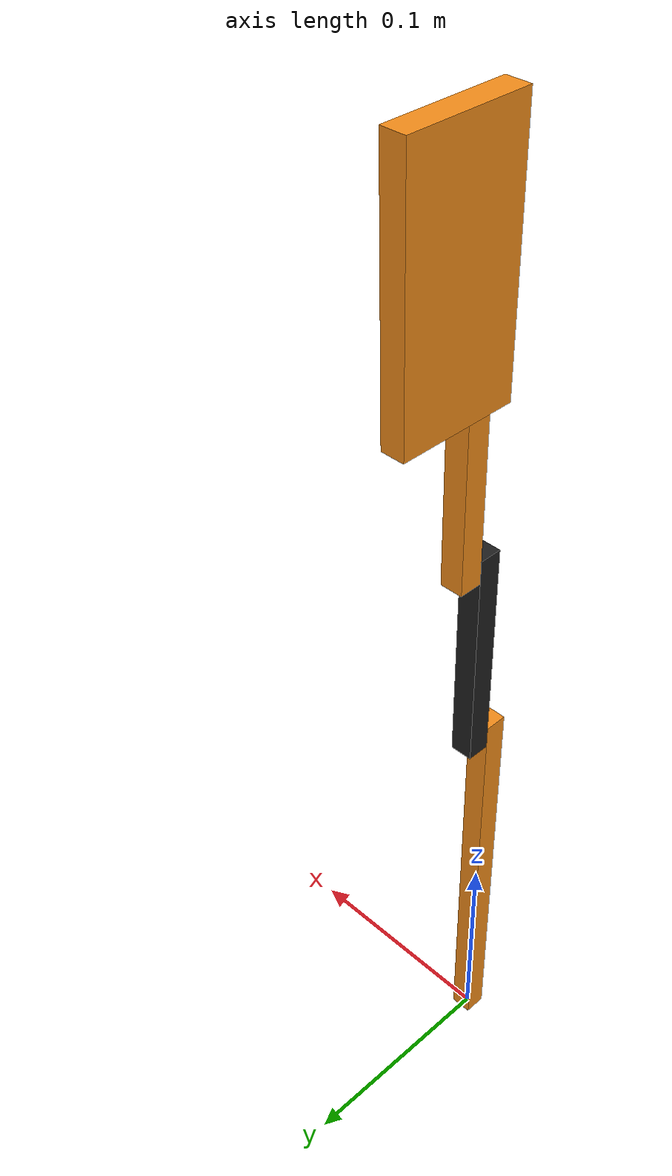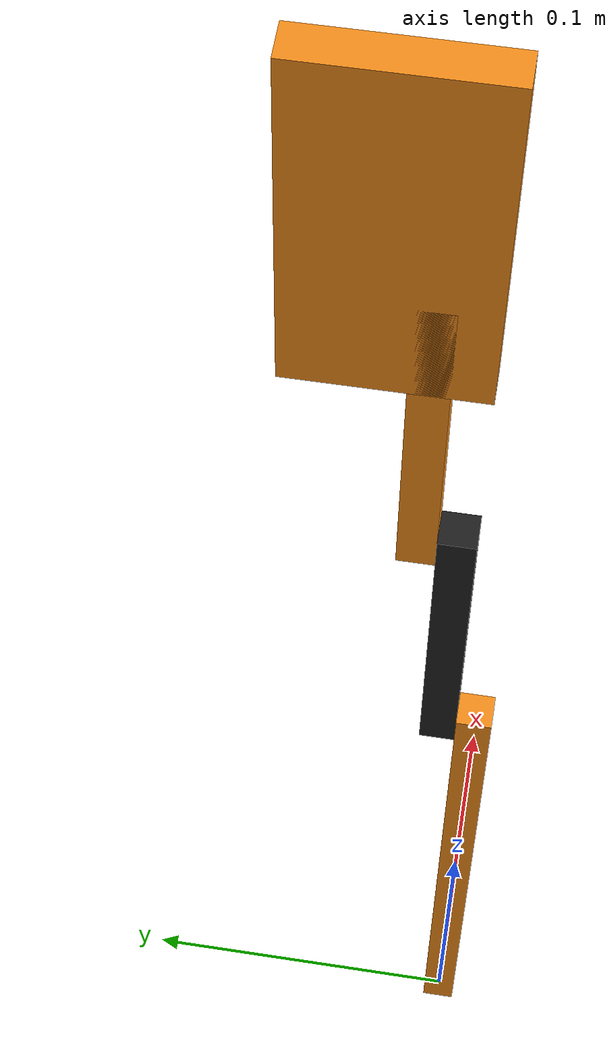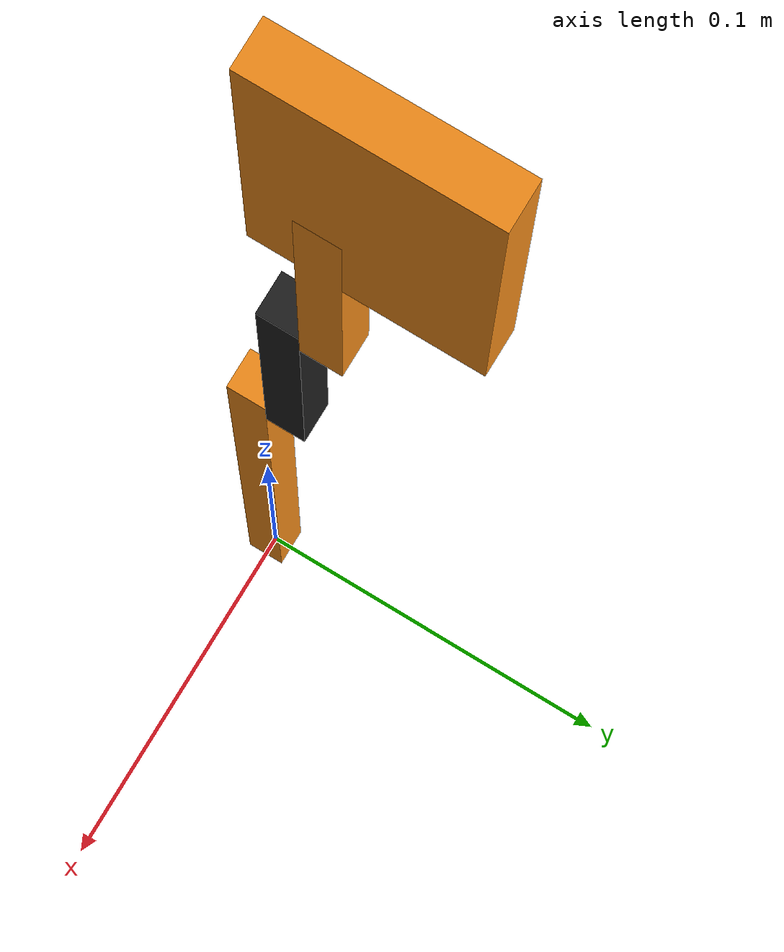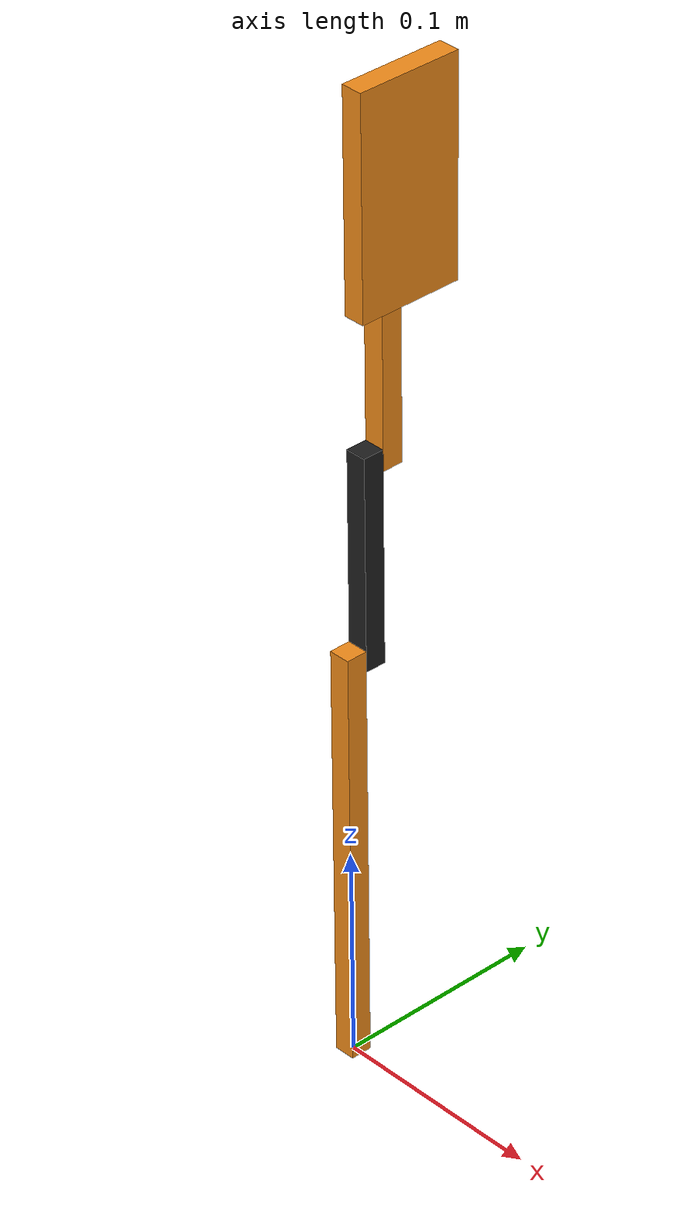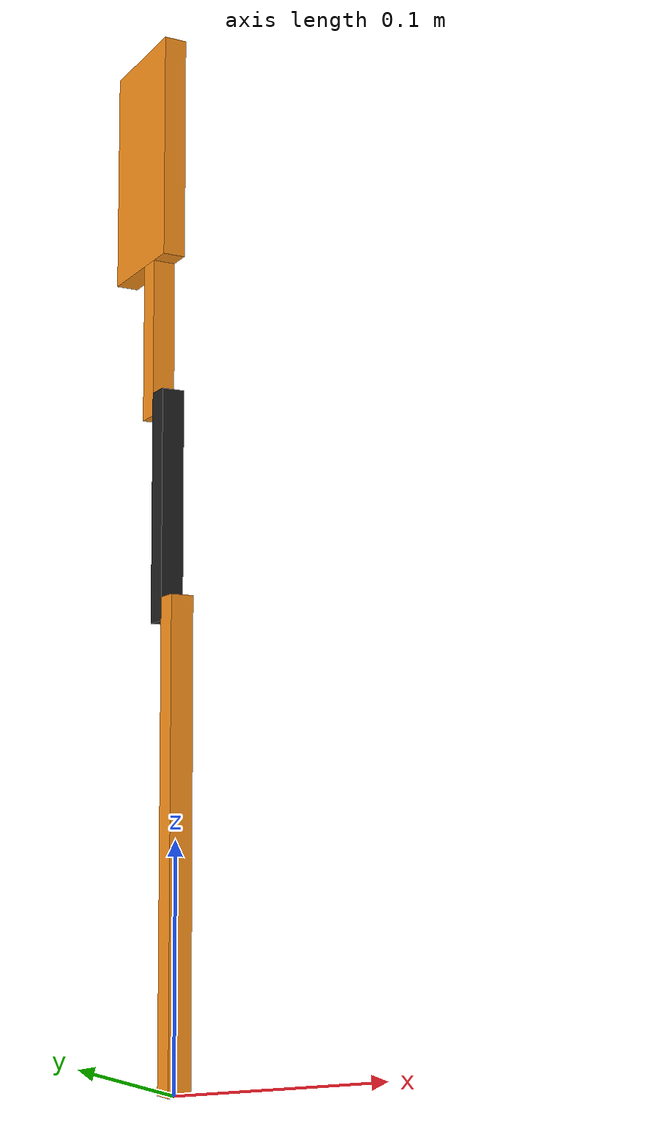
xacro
<!-- Revolute-Revolute Manipulator -->
<robot name="acrobot" xmlns:xacro="http://www.ros.org/wiki/xacro">

  <!-- Constants for robot dimensions -->
  <xacro:property name="PI" value="3.1415926535897931"/>
  <xacro:property name="width" value="0.01" /> <!-- Square dimensions (widthxwidth) of beams -->
  <xacro:property name="height1" value="0.2" /> <!-- Link 1 -->
  <xacro:property name="height2" value="0.1" /> <!-- Link 2 -->
  <xacro:property name="height3" value="0.1" /> <!-- Link 3 -->
  <xacro:property name="height4" value="0.01" /> <!-- Link 3 -->
  <xacro:property name="camera_link" value="0.005" /> <!-- Size of square 'camera' box -->
  <xacro:property name="axel_offset" value="0.005" /> <!-- Space btw top of beam and the each joint -->

  <!-- Import all Gazebo-customization elements, including Gazebo colors -->
  <xacro:include filename="$(find acrobot_description)/urdf/acrobot.gazebo" />
  <!-- Import Rviz colors -->
  <xacro:include filename="$(find acrobot_description)/urdf/materials.xacro" />

  <!-- Used for fixing robot to Gazebo 'base_link' -->
  <link name="world"/>

  <joint name="fixed" type="fixed">
    <parent link="world"/>
    <child link="link1"/>
    <origin xyz="0 0 0" rpy="0 0 0"/>
  </joint>

  <!-- Base Link -->
  <link name="link1">
    <collision>
      <origin xyz="0 0 ${height1/2}" rpy="0 0 0"/>
      <geometry>
	       <box size="${width} ${width} ${height1}"/>
      </geometry>
    </collision>

    <visual>
      <origin xyz="0 0 ${height1/2}" rpy="0 0 0"/>
      <geometry>
	       <box size="${width} ${width} ${height1}"/>
      </geometry>
      <material name="orange"/>
    </visual>

    <inertial>
      <origin xyz="0 0 ${height1/2}" rpy="0 0 0"/>
      <mass value="0.15"/>
      <inertia
	  ixx="1.0" ixy="0.0" ixz="0.0"
	  iyy="1.0" iyz="0.0"
	  izz="1.0"/>
    </inertial>
  </link>

  <joint name="joint1" type="continuous">
    <parent link="link1"/>
    <child link="link2"/>
    <origin xyz="0 ${width} ${height1 - axel_offset}" rpy="0 0 0"/>
    <axis xyz="0 1 0"/>
    <dynamics damping="0.3"/>
  </joint>

  <!-- Middle Link -->
  <link name="link2">
    <collision>
      <origin xyz="0 0 ${height2/2 - axel_offset}" rpy="0 0 0"/>
      <geometry>
	<box size="${width} ${width} ${height2}"/>
      </geometry>
    </collision>

    <visual>
      <origin xyz="0 0 ${height2/2 - axel_offset}" rpy="0 0 0"/>
      <geometry>
	<box size="${width} ${width} ${height2}"/>
      </geometry>
      <material name="black"/>
    </visual>

    <inertial>
      <origin xyz="0 0 ${height2 - axel_offset}" rpy="0 0 0"/>
      <mass value="0.15"/>
      <inertia
	  ixx="1" ixy="0.0" ixz="0.0"
	  iyy="0.0015" iyz="0.0"
	  izz="1"/>
    </inertial>
  </link>

  <joint name="joint2" type="continuous">
    <parent link="link2"/>
    <child link="link3"/>
    <origin xyz="0 ${width} ${height2 - axel_offset*2}" rpy="0 0 0"/>
    <axis xyz="0 1 0"/>
    <dynamics damping="0.3"/>
  </joint>

  <!-- Top Link -->
  <link name="link3">
    <collision>
      <origin xyz="0 0 ${height3/2 - axel_offset}" rpy="0 0 0"/>
      <geometry>
	<box size="${width} ${width} ${height3}"/>
      </geometry>
    </collision>

    <visual>
      <origin xyz="0 0 ${height3/2 - axel_offset}" rpy="0 0 0"/>
      <geometry>
	<box size="${width} ${width} ${height3}"/>
      </geometry>
      <material name="orange"/>
    </visual>

    <inertial>
      <origin xyz="0 0 ${height3 - axel_offset}" rpy="0 0 0"/>
      <mass value="0.15"/>
      <inertia
	  ixx="1" ixy="0.0" ixz="0.0"
	  iyy="0.0015" iyz="0.0"
	  izz="1"/>
    </inertial>
  </link>

<joint name="joint3" type="continuous">
    <parent link="link3"/>
    <child link="link4"/>
    <origin xyz="0 ${width} ${height3+0.01}" rpy="0 0 0"/>
    <axis xyz="1 0 0"/>
    <dynamics damping="0.3"/>
  </joint>

  <!-- jiao ban -->
  <link name="link4">
    <collision>
      <origin xyz="0 0 ${height4/2}" rpy="0 0 0"/>
      <geometry>
	<box size="${0.01} ${0.05} ${height3}"/>
      </geometry>
    </collision>

    <visual>
      <origin xyz="0 0 ${height4/2}" rpy="0 0 0"/>
      <geometry>
	<box size="${0.01} ${0.05} ${height3}"/>
      </geometry>
      <material name="orange"/>
    </visual>

    <inertial>
      <origin xyz="0 0 ${height4/2}" rpy="0 0 0"/>
      <mass value="0.01"/>
      <inertia
	  ixx="1" ixy="0.0" ixz="0.0"
	  iyy="0.00001" iyz="0.0"
	  izz="1"/>
    </inertial>
  </link>

  <transmission name="tran1">
    <type>transmission_interface/SimpleTransmission</type>
    <joint name="joint1">
      <hardwareInterface>EffortJointInterface</hardwareInterface>
    </joint>
    <actuator name="motor1">
      <hardwareInterface>EffortJointInterface</hardwareInterface>
      <mechanicalReduction>1</mechanicalReduction>
    </actuator>
  </transmission>

  <transmission name="tran2">
    <type>transmission_interface/SimpleTransmission</type>
    <joint name="joint2">
      <hardwareInterface>EffortJointInterface</hardwareInterface>
    </joint>
    <actuator name="motor2">
      <hardwareInterface>EffortJointInterface</hardwareInterface>
      <mechanicalReduction>1</mechanicalReduction>
    </actuator>
  </transmission>

</robot>
